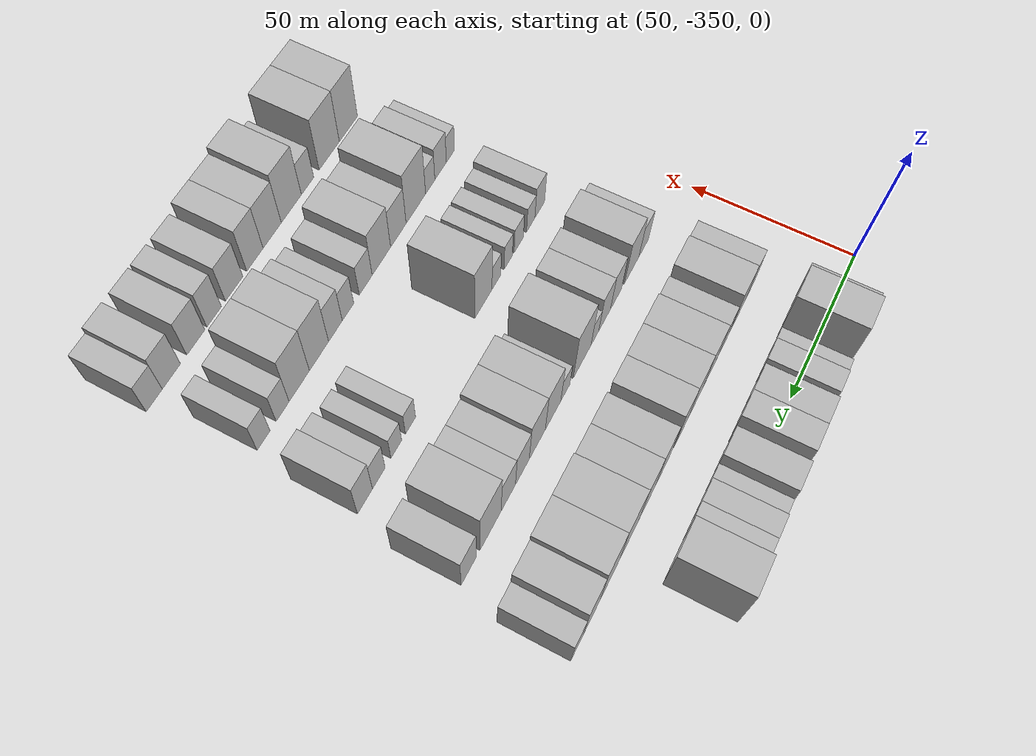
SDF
<sdf version="1.6">
 <world name="default">
  <model name="building_21">
   <static>1</static>
   <pose>50.0000 -328.9839 0 0.000000 0.000000 0.000000</pose>
   <link name="link">
    <pose>0 0 7.50 0 0 0</pose>
    <collision name="collision"><geometry><box><size>20.0000 6.6802 15.0000</size></box></geometry></collision>
    <visual name="visual">
     <cast_shadows>0</cast_shadows>
     <geometry><box><size>20.0000 6.6802 15.0000</size></box></geometry>
     <material>
      <script>
       <uri>model://HANNAS_wall/materials/scripts</uri>
       <uri>model://HANNAS_wall/materials/textures</uri>
       <name>vrc/HANNAS_wall</name>
      </script>
     </material>
    </visual>
   </link>
  </model>
  <model name="building_22">
   <static>1</static>
   <pose>50.0000 -320.3339 0 0.000000 0.000000 0.000000</pose>
   <link name="link">
    <pose>0 0 12.00 0 0 0</pose>
    <collision name="collision"><geometry><box><size>20.0000 10.6198 24.0000</size></box></geometry></collision>
    <visual name="visual">
     <cast_shadows>0</cast_shadows>
     <geometry><box><size>20.0000 10.6198 24.0000</size></box></geometry>
     <material>
      <script>
       <uri>model://HANNAS_wall/materials/scripts</uri>
       <uri>model://HANNAS_wall/materials/textures</uri>
       <name>vrc/HANNAS_wall</name>
      </script>
     </material>
    </visual>
   </link>
  </model>
  <model name="building_23">
   <static>1</static>
   <pose>50.0000 -309.4199 0 0.000000 0.000000 0.000000</pose>
   <link name="link">
    <pose>0 0 6.00 0 0 0</pose>
    <collision name="collision"><geometry><box><size>20.0000 5.2083 12.0000</size></box></geometry></collision>
    <visual name="visual">
     <cast_shadows>0</cast_shadows>
     <geometry><box><size>20.0000 5.2083 12.0000</size></box></geometry>
     <material>
      <script>
       <uri>model://HANNAS_wall/materials/scripts</uri>
       <uri>model://HANNAS_wall/materials/textures</uri>
       <name>vrc/HANNAS_wall</name>
      </script>
     </material>
    </visual>
   </link>
  </model>
  <model name="building_24">
   <static>1</static>
   <pose>50.0000 -303.4045 0 0.000000 0.000000 0.000000</pose>
   <link name="link">
    <pose>0 0 7.50 0 0 0</pose>
    <collision name="collision"><geometry><box><size>20.0000 6.8224 15.0000</size></box></geometry></collision>
    <visual name="visual">
     <cast_shadows>0</cast_shadows>
     <geometry><box><size>20.0000 6.8224 15.0000</size></box></geometry>
     <material>
      <script>
       <uri>model://HANNAS_wall/materials/scripts</uri>
       <uri>model://HANNAS_wall/materials/textures</uri>
       <name>vrc/HANNAS_wall</name>
      </script>
     </material>
    </visual>
   </link>
  </model>
  <model name="building_25">
   <static>1</static>
   <pose>50.0000 -292.8908 0 0.000000 0.000000 0.000000</pose>
   <link name="link">
    <pose>0 0 9.00 0 0 0</pose>
    <collision name="collision"><geometry><box><size>20.0000 8.2052 18.0000</size></box></geometry></collision>
    <visual name="visual">
     <cast_shadows>0</cast_shadows>
     <geometry><box><size>20.0000 8.2052 18.0000</size></box></geometry>
     <material>
      <script>
       <uri>model://HANNAS_wall/materials/scripts</uri>
       <uri>model://HANNAS_wall/materials/textures</uri>
       <name>vrc/HANNAS_wall</name>
      </script>
     </material>
    </visual>
   </link>
  </model>
  <model name="building_26">
   <static>1</static>
   <pose>50.0000 -284.7162 0 0.000000 0.000000 0.000000</pose>
   <link name="link">
    <pose>0 0 9.00 0 0 0</pose>
    <collision name="collision"><geometry><box><size>20.0000 8.1438 18.0000</size></box></geometry></collision>
    <visual name="visual">
     <cast_shadows>0</cast_shadows>
     <geometry><box><size>20.0000 8.1438 18.0000</size></box></geometry>
     <material>
      <script>
       <uri>model://HANNAS_wall/materials/scripts</uri>
       <uri>model://HANNAS_wall/materials/textures</uri>
       <name>vrc/HANNAS_wall</name>
      </script>
     </material>
    </visual>
   </link>
  </model>
  <model name="building_27">
   <static>1</static>
   <pose>50.0000 -273.2896 0 0.000000 0.000000 0.000000</pose>
   <link name="link">
    <pose>0 0 9.00 0 0 0</pose>
    <collision name="collision"><geometry><box><size>20.0000 8.7095 18.0000</size></box></geometry></collision>
    <visual name="visual">
     <cast_shadows>0</cast_shadows>
     <geometry><box><size>20.0000 8.7095 18.0000</size></box></geometry>
     <material>
      <script>
       <uri>model://HANNAS_wall/materials/scripts</uri>
       <uri>model://HANNAS_wall/materials/textures</uri>
       <name>vrc/HANNAS_wall</name>
      </script>
     </material>
    </visual>
   </link>
  </model>
  <model name="building_28">
   <static>1</static>
   <pose>50.0000 -266.2153 0 0.000000 0.000000 0.000000</pose>
   <link name="link">
    <pose>0 0 6.00 0 0 0</pose>
    <collision name="collision"><geometry><box><size>20.0000 5.4390 12.0000</size></box></geometry></collision>
    <visual name="visual">
     <cast_shadows>0</cast_shadows>
     <geometry><box><size>20.0000 5.4390 12.0000</size></box></geometry>
     <material>
      <script>
       <uri>model://HANNAS_wall/materials/scripts</uri>
       <uri>model://HANNAS_wall/materials/textures</uri>
       <name>vrc/HANNAS_wall</name>
      </script>
     </material>
    </visual>
   </link>
  </model>
  <model name="building_29">
   <static>1</static>
   <pose>50.0000 -260.1378 0 0.000000 0.000000 0.000000</pose>
   <link name="link">
    <pose>0 0 7.50 0 0 0</pose>
    <collision name="collision"><geometry><box><size>20.0000 6.7161 15.0000</size></box></geometry></collision>
    <visual name="visual">
     <cast_shadows>0</cast_shadows>
     <geometry><box><size>20.0000 6.7161 15.0000</size></box></geometry>
     <material>
      <script>
       <uri>model://HANNAS_wall/materials/scripts</uri>
       <uri>model://HANNAS_wall/materials/textures</uri>
       <name>vrc/HANNAS_wall</name>
      </script>
     </material>
    </visual>
   </link>
  </model>
  <model name="building_30">
   <static>1</static>
   <pose>50.0000 -253.0541 0 0.000000 0.000000 0.000000</pose>
   <link name="link">
    <pose>0 0 7.50 0 0 0</pose>
    <collision name="collision"><geometry><box><size>20.0000 7.4514 15.0000</size></box></geometry></collision>
    <visual name="visual">
     <cast_shadows>0</cast_shadows>
     <geometry><box><size>20.0000 7.4514 15.0000</size></box></geometry>
     <material>
      <script>
       <uri>model://HANNAS_wall/materials/scripts</uri>
       <uri>model://HANNAS_wall/materials/textures</uri>
       <name>vrc/HANNAS_wall</name>
      </script>
     </material>
    </visual>
   </link>
  </model>
  <model name="building_31">
   <static>1</static>
   <pose>50.0000 -243.6839 0 0.000000 0.000000 0.000000</pose>
   <link name="link">
    <pose>0 0 12.00 0 0 0</pose>
    <collision name="collision"><geometry><box><size>20.0000 11.2891 24.0000</size></box></geometry></collision>
    <visual name="visual">
     <cast_shadows>0</cast_shadows>
     <geometry><box><size>20.0000 11.2891 24.0000</size></box></geometry>
     <material>
      <script>
       <uri>model://HANNAS_wall/materials/scripts</uri>
       <uri>model://HANNAS_wall/materials/textures</uri>
       <name>vrc/HANNAS_wall</name>
      </script>
     </material>
    </visual>
   </link>
  </model>
  <model name="building_138">
   <static>1</static>
   <pose>82.0000 -324.6892 0 0.000000 0.000000 0.000000</pose>
   <link name="link">
    <pose>0 0 9.00 0 0 0</pose>
    <collision name="collision"><geometry><box><size>20.0000 7.4037 18.0000</size></box></geometry></collision>
    <visual name="visual">
     <cast_shadows>0</cast_shadows>
     <geometry><box><size>20.0000 7.4037 18.0000</size></box></geometry>
     <material>
      <script>
       <uri>model://HANNAS_wall/materials/scripts</uri>
       <uri>model://HANNAS_wall/materials/textures</uri>
       <name>vrc/HANNAS_wall</name>
      </script>
     </material>
    </visual>
   </link>
  </model>
  <model name="building_139">
   <static>1</static>
   <pose>82.0000 -315.9033 0 0.000000 0.000000 0.000000</pose>
   <link name="link">
    <pose>0 0 10.50 0 0 0</pose>
    <collision name="collision"><geometry><box><size>20.0000 10.1682 21.0000</size></box></geometry></collision>
    <visual name="visual">
     <cast_shadows>0</cast_shadows>
     <geometry><box><size>20.0000 10.1682 21.0000</size></box></geometry>
     <material>
      <script>
       <uri>model://HANNAS_wall/materials/scripts</uri>
       <uri>model://HANNAS_wall/materials/textures</uri>
       <name>vrc/HANNAS_wall</name>
      </script>
     </material>
    </visual>
   </link>
  </model>
  <model name="building_140">
   <static>1</static>
   <pose>82.0000 -304.9420 0 0.000000 0.000000 0.000000</pose>
   <link name="link">
    <pose>0 0 9.00 0 0 0</pose>
    <collision name="collision"><geometry><box><size>20.0000 7.7544 18.0000</size></box></geometry></collision>
    <visual name="visual">
     <cast_shadows>0</cast_shadows>
     <geometry><box><size>20.0000 7.7544 18.0000</size></box></geometry>
     <material>
      <script>
       <uri>model://HANNAS_wall/materials/scripts</uri>
       <uri>model://HANNAS_wall/materials/textures</uri>
       <name>vrc/HANNAS_wall</name>
      </script>
     </material>
    </visual>
   </link>
  </model>
  <model name="building_141">
   <static>1</static>
   <pose>82.0000 -296.1862 0 0.000000 0.000000 0.000000</pose>
   <link name="link">
    <pose>0 0 10.50 0 0 0</pose>
    <collision name="collision"><geometry><box><size>20.0000 9.7571 21.0000</size></box></geometry></collision>
    <visual name="visual">
     <cast_shadows>0</cast_shadows>
     <geometry><box><size>20.0000 9.7571 21.0000</size></box></geometry>
     <material>
      <script>
       <uri>model://HANNAS_wall/materials/scripts</uri>
       <uri>model://HANNAS_wall/materials/textures</uri>
       <name>vrc/HANNAS_wall</name>
      </script>
     </material>
    </visual>
   </link>
  </model>
  <model name="building_142">
   <static>1</static>
   <pose>82.0000 -286.1966 0 0.000000 0.000000 0.000000</pose>
   <link name="link">
    <pose>0 0 10.50 0 0 0</pose>
    <collision name="collision"><geometry><box><size>20.0000 10.2221 21.0000</size></box></geometry></collision>
    <visual name="visual">
     <cast_shadows>0</cast_shadows>
     <geometry><box><size>20.0000 10.2221 21.0000</size></box></geometry>
     <material>
      <script>
       <uri>model://HANNAS_wall/materials/scripts</uri>
       <uri>model://HANNAS_wall/materials/textures</uri>
       <name>vrc/HANNAS_wall</name>
      </script>
     </material>
    </visual>
   </link>
  </model>
  <model name="building_143">
   <static>1</static>
   <pose>82.0000 -276.7585 0 0.000000 0.000000 0.000000</pose>
   <link name="link">
    <pose>0 0 10.50 0 0 0</pose>
    <collision name="collision"><geometry><box><size>20.0000 8.6542 21.0000</size></box></geometry></collision>
    <visual name="visual">
     <cast_shadows>0</cast_shadows>
     <geometry><box><size>20.0000 8.6542 21.0000</size></box></geometry>
     <material>
      <script>
       <uri>model://HANNAS_wall/materials/scripts</uri>
       <uri>model://HANNAS_wall/materials/textures</uri>
       <name>vrc/HANNAS_wall</name>
      </script>
     </material>
    </visual>
   </link>
  </model>
  <model name="building_144">
   <static>1</static>
   <pose>82.0000 -264.7144 0 0.000000 0.000000 0.000000</pose>
   <link name="link">
    <pose>0 0 10.50 0 0 0</pose>
    <collision name="collision"><geometry><box><size>20.0000 9.4339 21.0000</size></box></geometry></collision>
    <visual name="visual">
     <cast_shadows>0</cast_shadows>
     <geometry><box><size>20.0000 9.4339 21.0000</size></box></geometry>
     <material>
      <script>
       <uri>model://HANNAS_wall/materials/scripts</uri>
       <uri>model://HANNAS_wall/materials/textures</uri>
       <name>vrc/HANNAS_wall</name>
      </script>
     </material>
    </visual>
   </link>
  </model>
  <model name="building_145">
   <static>1</static>
   <pose>82.0000 -255.0088 0 0.000000 0.000000 0.000000</pose>
   <link name="link">
    <pose>0 0 10.50 0 0 0</pose>
    <collision name="collision"><geometry><box><size>20.0000 9.9774 21.0000</size></box></geometry></collision>
    <visual name="visual">
     <cast_shadows>0</cast_shadows>
     <geometry><box><size>20.0000 9.9774 21.0000</size></box></geometry>
     <material>
      <script>
       <uri>model://HANNAS_wall/materials/scripts</uri>
       <uri>model://HANNAS_wall/materials/textures</uri>
       <name>vrc/HANNAS_wall</name>
      </script>
     </material>
    </visual>
   </link>
  </model>
  <model name="building_146">
   <static>1</static>
   <pose>82.0000 -244.0991 0 0.000000 0.000000 0.000000</pose>
   <link name="link">
    <pose>0 0 12.00 0 0 0</pose>
    <collision name="collision"><geometry><box><size>20.0000 11.8420 24.0000</size></box></geometry></collision>
    <visual name="visual">
     <cast_shadows>0</cast_shadows>
     <geometry><box><size>20.0000 11.8420 24.0000</size></box></geometry>
     <material>
      <script>
       <uri>model://HANNAS_wall/materials/scripts</uri>
       <uri>model://HANNAS_wall/materials/textures</uri>
       <name>vrc/HANNAS_wall</name>
      </script>
     </material>
    </visual>
   </link>
  </model>
  <model name="building_147">
   <static>1</static>
   <pose>82.0000 -232.5114 0 0.000000 0.000000 0.000000</pose>
   <link name="link">
    <pose>0 0 12.00 0 0 0</pose>
    <collision name="collision"><geometry><box><size>20.0000 11.3333 24.0000</size></box></geometry></collision>
    <visual name="visual">
     <cast_shadows>0</cast_shadows>
     <geometry><box><size>20.0000 11.3333 24.0000</size></box></geometry>
     <material>
      <script>
       <uri>model://HANNAS_wall/materials/scripts</uri>
       <uri>model://HANNAS_wall/materials/textures</uri>
       <name>vrc/HANNAS_wall</name>
      </script>
     </material>
    </visual>
   </link>
  </model>
  <model name="building_148">
   <static>1</static>
   <pose>82.0000 -222.1345 0 0.000000 0.000000 0.000000</pose>
   <link name="link">
    <pose>0 0 10.50 0 0 0</pose>
    <collision name="collision"><geometry><box><size>20.0000 9.4205 21.0000</size></box></geometry></collision>
    <visual name="visual">
     <cast_shadows>0</cast_shadows>
     <geometry><box><size>20.0000 9.4205 21.0000</size></box></geometry>
     <material>
      <script>
       <uri>model://HANNAS_wall/materials/scripts</uri>
       <uri>model://HANNAS_wall/materials/textures</uri>
       <name>vrc/HANNAS_wall</name>
      </script>
     </material>
    </visual>
   </link>
  </model>
  <model name="building_149">
   <static>1</static>
   <pose>82.0000 -214.0069 0 0.000000 0.000000 0.000000</pose>
   <link name="link">
    <pose>0 0 7.50 0 0 0</pose>
    <collision name="collision"><geometry><box><size>20.0000 6.8347 15.0000</size></box></geometry></collision>
    <visual name="visual">
     <cast_shadows>0</cast_shadows>
     <geometry><box><size>20.0000 6.8347 15.0000</size></box></geometry>
     <material>
      <script>
       <uri>model://HANNAS_wall/materials/scripts</uri>
       <uri>model://HANNAS_wall/materials/textures</uri>
       <name>vrc/HANNAS_wall</name>
      </script>
     </material>
    </visual>
   </link>
  </model>
  <model name="building_261">
   <static>1</static>
   <pose>114.0000 -324.1151 0 0.000000 0.000000 0.000000</pose>
   <link name="link">
    <pose>0 0 7.50 0 0 0</pose>
    <collision name="collision"><geometry><box><size>20.0000 6.7660 15.0000</size></box></geometry></collision>
    <visual name="visual">
     <cast_shadows>0</cast_shadows>
     <geometry><box><size>20.0000 6.7660 15.0000</size></box></geometry>
     <material>
      <script>
       <uri>model://HANNAS_wall/materials/scripts</uri>
       <uri>model://HANNAS_wall/materials/textures</uri>
       <name>vrc/HANNAS_wall</name>
      </script>
     </material>
    </visual>
   </link>
  </model>
  <model name="building_262">
   <static>1</static>
   <pose>114.0000 -315.8286 0 0.000000 0.000000 0.000000</pose>
   <link name="link">
    <pose>0 0 10.50 0 0 0</pose>
    <collision name="collision"><geometry><box><size>20.0000 9.8069 21.0000</size></box></geometry></collision>
    <visual name="visual">
     <cast_shadows>0</cast_shadows>
     <geometry><box><size>20.0000 9.8069 21.0000</size></box></geometry>
     <material>
      <script>
       <uri>model://HANNAS_wall/materials/scripts</uri>
       <uri>model://HANNAS_wall/materials/textures</uri>
       <name>vrc/HANNAS_wall</name>
      </script>
     </material>
    </visual>
   </link>
  </model>
  <model name="building_263">
   <static>1</static>
   <pose>114.0000 -305.2936 0 0.000000 0.000000 0.000000</pose>
   <link name="link">
    <pose>0 0 9.00 0 0 0</pose>
    <collision name="collision"><geometry><box><size>20.0000 7.2631 18.0000</size></box></geometry></collision>
    <visual name="visual">
     <cast_shadows>0</cast_shadows>
     <geometry><box><size>20.0000 7.2631 18.0000</size></box></geometry>
     <material>
      <script>
       <uri>model://HANNAS_wall/materials/scripts</uri>
       <uri>model://HANNAS_wall/materials/textures</uri>
       <name>vrc/HANNAS_wall</name>
      </script>
     </material>
    </visual>
   </link>
  </model>
  <model name="building_264">
   <static>1</static>
   <pose>114.0000 -297.8615 0 0.000000 0.000000 0.000000</pose>
   <link name="link">
    <pose>0 0 9.00 0 0 0</pose>
    <collision name="collision"><geometry><box><size>20.0000 7.6011 18.0000</size></box></geometry></collision>
    <visual name="visual">
     <cast_shadows>0</cast_shadows>
     <geometry><box><size>20.0000 7.6011 18.0000</size></box></geometry>
     <material>
      <script>
       <uri>model://HANNAS_wall/materials/scripts</uri>
       <uri>model://HANNAS_wall/materials/textures</uri>
       <name>vrc/HANNAS_wall</name>
      </script>
     </material>
    </visual>
   </link>
  </model>
  <model name="building_265">
   <static>1</static>
   <pose>114.0000 -291.5977 0 0.000000 0.000000 0.000000</pose>
   <link name="link">
    <pose>0 0 6.00 0 0 0</pose>
    <collision name="collision"><geometry><box><size>20.0000 4.9265 12.0000</size></box></geometry></collision>
    <visual name="visual">
     <cast_shadows>0</cast_shadows>
     <geometry><box><size>20.0000 4.9265 12.0000</size></box></geometry>
     <material>
      <script>
       <uri>model://HANNAS_wall/materials/scripts</uri>
       <uri>model://HANNAS_wall/materials/textures</uri>
       <name>vrc/HANNAS_wall</name>
      </script>
     </material>
    </visual>
   </link>
  </model>
  <model name="building_266">
   <static>1</static>
   <pose>114.0000 -283.5433 0 0.000000 0.000000 0.000000</pose>
   <link name="link">
    <pose>0 0 12.00 0 0 0</pose>
    <collision name="collision"><geometry><box><size>20.0000 11.1822 24.0000</size></box></geometry></collision>
    <visual name="visual">
     <cast_shadows>0</cast_shadows>
     <geometry><box><size>20.0000 11.1822 24.0000</size></box></geometry>
     <material>
      <script>
       <uri>model://HANNAS_wall/materials/scripts</uri>
       <uri>model://HANNAS_wall/materials/textures</uri>
       <name>vrc/HANNAS_wall</name>
      </script>
     </material>
    </visual>
   </link>
  </model>
  <model name="building_267">
   <static>1</static>
   <pose>114.0000 -273.1621 0 0.000000 0.000000 0.000000</pose>
   <link name="link">
    <pose>0 0 6.00 0 0 0</pose>
    <collision name="collision"><geometry><box><size>20.0000 5.5802 12.0000</size></box></geometry></collision>
    <visual name="visual">
     <cast_shadows>0</cast_shadows>
     <geometry><box><size>20.0000 5.5802 12.0000</size></box></geometry>
     <material>
      <script>
       <uri>model://HANNAS_wall/materials/scripts</uri>
       <uri>model://HANNAS_wall/materials/textures</uri>
       <name>vrc/HANNAS_wall</name>
      </script>
     </material>
    </visual>
   </link>
  </model>
  <model name="building_268">
   <static>1</static>
   <pose>114.0000 -265.7507 0 0.000000 0.000000 0.000000</pose>
   <link name="link">
    <pose>0 0 10.50 0 0 0</pose>
    <collision name="collision"><geometry><box><size>20.0000 9.2427 21.0000</size></box></geometry></collision>
    <visual name="visual">
     <cast_shadows>0</cast_shadows>
     <geometry><box><size>20.0000 9.2427 21.0000</size></box></geometry>
     <material>
      <script>
       <uri>model://HANNAS_wall/materials/scripts</uri>
       <uri>model://HANNAS_wall/materials/textures</uri>
       <name>vrc/HANNAS_wall</name>
      </script>
     </material>
    </visual>
   </link>
  </model>
  <model name="building_269">
   <static>1</static>
   <pose>114.0000 -256.4386 0 0.000000 0.000000 0.000000</pose>
   <link name="link">
    <pose>0 0 10.50 0 0 0</pose>
    <collision name="collision"><geometry><box><size>20.0000 9.3814 21.0000</size></box></geometry></collision>
    <visual name="visual">
     <cast_shadows>0</cast_shadows>
     <geometry><box><size>20.0000 9.3814 21.0000</size></box></geometry>
     <material>
      <script>
       <uri>model://HANNAS_wall/materials/scripts</uri>
       <uri>model://HANNAS_wall/materials/textures</uri>
       <name>vrc/HANNAS_wall</name>
      </script>
     </material>
    </visual>
   </link>
  </model>
  <model name="building_270">
   <static>1</static>
   <pose>114.0000 -247.8309 0 0.000000 0.000000 0.000000</pose>
   <link name="link">
    <pose>0 0 9.00 0 0 0</pose>
    <collision name="collision"><geometry><box><size>20.0000 7.8340 18.0000</size></box></geometry></collision>
    <visual name="visual">
     <cast_shadows>0</cast_shadows>
     <geometry><box><size>20.0000 7.8340 18.0000</size></box></geometry>
     <material>
      <script>
       <uri>model://HANNAS_wall/materials/scripts</uri>
       <uri>model://HANNAS_wall/materials/textures</uri>
       <name>vrc/HANNAS_wall</name>
      </script>
     </material>
    </visual>
   </link>
  </model>
  <model name="building_271">
   <static>1</static>
   <pose>114.0000 -239.8978 0 0.000000 0.000000 0.000000</pose>
   <link name="link">
    <pose>0 0 9.00 0 0 0</pose>
    <collision name="collision"><geometry><box><size>20.0000 8.0323 18.0000</size></box></geometry></collision>
    <visual name="visual">
     <cast_shadows>0</cast_shadows>
     <geometry><box><size>20.0000 8.0323 18.0000</size></box></geometry>
     <material>
      <script>
       <uri>model://HANNAS_wall/materials/scripts</uri>
       <uri>model://HANNAS_wall/materials/textures</uri>
       <name>vrc/HANNAS_wall</name>
      </script>
     </material>
    </visual>
   </link>
  </model>
  <model name="building_272">
   <static>1</static>
   <pose>114.0000 -230.1592 0 0.000000 0.000000 0.000000</pose>
   <link name="link">
    <pose>0 0 12.00 0 0 0</pose>
    <collision name="collision"><geometry><box><size>20.0000 11.4448 24.0000</size></box></geometry></collision>
    <visual name="visual">
     <cast_shadows>0</cast_shadows>
     <geometry><box><size>20.0000 11.4448 24.0000</size></box></geometry>
     <material>
      <script>
       <uri>model://HANNAS_wall/materials/scripts</uri>
       <uri>model://HANNAS_wall/materials/textures</uri>
       <name>vrc/HANNAS_wall</name>
      </script>
     </material>
    </visual>
   </link>
  </model>
  <model name="building_273">
   <static>1</static>
   <pose>114.0000 -218.4483 0 0.000000 0.000000 0.000000</pose>
   <link name="link">
    <pose>0 0 9.00 0 0 0</pose>
    <collision name="collision"><geometry><box><size>20.0000 7.9770 18.0000</size></box></geometry></collision>
    <visual name="visual">
     <cast_shadows>0</cast_shadows>
     <geometry><box><size>20.0000 7.9770 18.0000</size></box></geometry>
     <material>
      <script>
       <uri>model://HANNAS_wall/materials/scripts</uri>
       <uri>model://HANNAS_wall/materials/textures</uri>
       <name>vrc/HANNAS_wall</name>
      </script>
     </material>
    </visual>
   </link>
  </model>
  <model name="building_376">
   <static>1</static>
   <pose>146.0000 -321.7645 0 0.000000 0.000000 0.000000</pose>
   <link name="link">
    <pose>0 0 7.50 0 0 0</pose>
    <collision name="collision"><geometry><box><size>20.0000 6.2545 15.0000</size></box></geometry></collision>
    <visual name="visual">
     <cast_shadows>0</cast_shadows>
     <geometry><box><size>20.0000 6.2545 15.0000</size></box></geometry>
     <material>
      <script>
       <uri>model://HANNAS_wall/materials/scripts</uri>
       <uri>model://HANNAS_wall/materials/textures</uri>
       <name>vrc/HANNAS_wall</name>
      </script>
     </material>
    </visual>
   </link>
  </model>
  <model name="building_377">
   <static>1</static>
   <pose>146.0000 -315.9708 0 0.000000 0.000000 0.000000</pose>
   <link name="link">
    <pose>0 0 6.00 0 0 0</pose>
    <collision name="collision"><geometry><box><size>20.0000 5.3329 12.0000</size></box></geometry></collision>
    <visual name="visual">
     <cast_shadows>0</cast_shadows>
     <geometry><box><size>20.0000 5.3329 12.0000</size></box></geometry>
     <material>
      <script>
       <uri>model://HANNAS_wall/materials/scripts</uri>
       <uri>model://HANNAS_wall/materials/textures</uri>
       <name>vrc/HANNAS_wall</name>
      </script>
     </material>
    </visual>
   </link>
  </model>
  <model name="building_378">
   <static>1</static>
   <pose>146.0000 -308.3837 0 0.000000 0.000000 0.000000</pose>
   <link name="link">
    <pose>0 0 6.00 0 0 0</pose>
    <collision name="collision"><geometry><box><size>20.0000 5.8414 12.0000</size></box></geometry></collision>
    <visual name="visual">
     <cast_shadows>0</cast_shadows>
     <geometry><box><size>20.0000 5.8414 12.0000</size></box></geometry>
     <material>
      <script>
       <uri>model://HANNAS_wall/materials/scripts</uri>
       <uri>model://HANNAS_wall/materials/textures</uri>
       <name>vrc/HANNAS_wall</name>
      </script>
     </material>
    </visual>
   </link>
  </model>
  <model name="building_379">
   <static>1</static>
   <pose>146.0000 -301.8788 0 0.000000 0.000000 0.000000</pose>
   <link name="link">
    <pose>0 0 6.00 0 0 0</pose>
    <collision name="collision"><geometry><box><size>20.0000 5.1683 12.0000</size></box></geometry></collision>
    <visual name="visual">
     <cast_shadows>0</cast_shadows>
     <geometry><box><size>20.0000 5.1683 12.0000</size></box></geometry>
     <material>
      <script>
       <uri>model://HANNAS_wall/materials/scripts</uri>
       <uri>model://HANNAS_wall/materials/textures</uri>
       <name>vrc/HANNAS_wall</name>
      </script>
     </material>
    </visual>
   </link>
  </model>
  <model name="building_380">
   <static>1</static>
   <pose>146.0000 -294.6162 0 0.000000 0.000000 0.000000</pose>
   <link name="link">
    <pose>0 0 6.00 0 0 0</pose>
    <collision name="collision"><geometry><box><size>20.0000 5.3569 12.0000</size></box></geometry></collision>
    <visual name="visual">
     <cast_shadows>0</cast_shadows>
     <geometry><box><size>20.0000 5.3569 12.0000</size></box></geometry>
     <material>
      <script>
       <uri>model://HANNAS_wall/materials/scripts</uri>
       <uri>model://HANNAS_wall/materials/textures</uri>
       <name>vrc/HANNAS_wall</name>
      </script>
     </material>
    </visual>
   </link>
  </model>
  <model name="building_381">
   <static>1</static>
   <pose>146.0000 -286.8459 0 0.000000 0.000000 0.000000</pose>
   <link name="link">
    <pose>0 0 12.00 0 0 0</pose>
    <collision name="collision"><geometry><box><size>20.0000 10.1837 24.0000</size></box></geometry></collision>
    <visual name="visual">
     <cast_shadows>0</cast_shadows>
     <geometry><box><size>20.0000 10.1837 24.0000</size></box></geometry>
     <material>
      <script>
       <uri>model://HANNAS_wall/materials/scripts</uri>
       <uri>model://HANNAS_wall/materials/textures</uri>
       <name>vrc/HANNAS_wall</name>
      </script>
     </material>
    </visual>
   </link>
  </model>
  <model name="building_382">
   <static>1</static>
   <pose>146.0000 -245.6179 0 0.000000 0.000000 0.000000</pose>
   <link name="link">
    <pose>0 0 6.00 0 0 0</pose>
    <collision name="collision"><geometry><box><size>20.0000 5.4241 12.0000</size></box></geometry></collision>
    <visual name="visual">
     <cast_shadows>0</cast_shadows>
     <geometry><box><size>20.0000 5.4241 12.0000</size></box></geometry>
     <material>
      <script>
       <uri>model://HANNAS_wall/materials/scripts</uri>
       <uri>model://HANNAS_wall/materials/textures</uri>
       <name>vrc/HANNAS_wall</name>
      </script>
     </material>
    </visual>
   </link>
  </model>
  <model name="building_383">
   <static>1</static>
   <pose>146.0000 -238.0729 0 0.000000 0.000000 0.000000</pose>
   <link name="link">
    <pose>0 0 6.00 0 0 0</pose>
    <collision name="collision"><geometry><box><size>20.0000 5.6659 12.0000</size></box></geometry></collision>
    <visual name="visual">
     <cast_shadows>0</cast_shadows>
     <geometry><box><size>20.0000 5.6659 12.0000</size></box></geometry>
     <material>
      <script>
       <uri>model://HANNAS_wall/materials/scripts</uri>
       <uri>model://HANNAS_wall/materials/textures</uri>
       <name>vrc/HANNAS_wall</name>
      </script>
     </material>
    </visual>
   </link>
  </model>
  <model name="building_384">
   <static>1</static>
   <pose>146.0000 -228.9917 0 0.000000 0.000000 0.000000</pose>
   <link name="link">
    <pose>0 0 7.50 0 0 0</pose>
    <collision name="collision"><geometry><box><size>20.0000 6.4965 15.0000</size></box></geometry></collision>
    <visual name="visual">
     <cast_shadows>0</cast_shadows>
     <geometry><box><size>20.0000 6.4965 15.0000</size></box></geometry>
     <material>
      <script>
       <uri>model://HANNAS_wall/materials/scripts</uri>
       <uri>model://HANNAS_wall/materials/textures</uri>
       <name>vrc/HANNAS_wall</name>
      </script>
     </material>
    </visual>
   </link>
  </model>
  <model name="building_385">
   <static>1</static>
   <pose>146.0000 -221.9746 0 0.000000 0.000000 0.000000</pose>
   <link name="link">
    <pose>0 0 9.00 0 0 0</pose>
    <collision name="collision"><geometry><box><size>20.0000 7.5379 18.0000</size></box></geometry></collision>
    <visual name="visual">
     <cast_shadows>0</cast_shadows>
     <geometry><box><size>20.0000 7.5379 18.0000</size></box></geometry>
     <material>
      <script>
       <uri>model://HANNAS_wall/materials/scripts</uri>
       <uri>model://HANNAS_wall/materials/textures</uri>
       <name>vrc/HANNAS_wall</name>
      </script>
     </material>
    </visual>
   </link>
  </model>
  <model name="building_485">
   <static>1</static>
   <pose>178.0000 -326.3454 0 0.000000 0.000000 0.000000</pose>
   <link name="link">
    <pose>0 0 6.00 0 0 0</pose>
    <collision name="collision"><geometry><box><size>20.0000 5.0792 12.0000</size></box></geometry></collision>
    <visual name="visual">
     <cast_shadows>0</cast_shadows>
     <geometry><box><size>20.0000 5.0792 12.0000</size></box></geometry>
     <material>
      <script>
       <uri>model://HANNAS_wall/materials/scripts</uri>
       <uri>model://HANNAS_wall/materials/textures</uri>
       <name>vrc/HANNAS_wall</name>
      </script>
     </material>
    </visual>
   </link>
  </model>
  <model name="building_486">
   <static>1</static>
   <pose>178.0000 -320.2861 0 0.000000 0.000000 0.000000</pose>
   <link name="link">
    <pose>0 0 7.50 0 0 0</pose>
    <collision name="collision"><geometry><box><size>20.0000 7.0393 15.0000</size></box></geometry></collision>
    <visual name="visual">
     <cast_shadows>0</cast_shadows>
     <geometry><box><size>20.0000 7.0393 15.0000</size></box></geometry>
     <material>
      <script>
       <uri>model://HANNAS_wall/materials/scripts</uri>
       <uri>model://HANNAS_wall/materials/textures</uri>
       <name>vrc/HANNAS_wall</name>
      </script>
     </material>
    </visual>
   </link>
  </model>
  <model name="building_487">
   <static>1</static>
   <pose>178.0000 -313.9782 0 0.000000 0.000000 0.000000</pose>
   <link name="link">
    <pose>0 0 6.00 0 0 0</pose>
    <collision name="collision"><geometry><box><size>20.0000 5.5766 12.0000</size></box></geometry></collision>
    <visual name="visual">
     <cast_shadows>0</cast_shadows>
     <geometry><box><size>20.0000 5.5766 12.0000</size></box></geometry>
     <material>
      <script>
       <uri>model://HANNAS_wall/materials/scripts</uri>
       <uri>model://HANNAS_wall/materials/textures</uri>
       <name>vrc/HANNAS_wall</name>
      </script>
     </material>
    </visual>
   </link>
  </model>
  <model name="building_488">
   <static>1</static>
   <pose>178.0000 -305.4232 0 0.000000 0.000000 0.000000</pose>
   <link name="link">
    <pose>0 0 12.00 0 0 0</pose>
    <collision name="collision"><geometry><box><size>20.0000 11.5334 24.0000</size></box></geometry></collision>
    <visual name="visual">
     <cast_shadows>0</cast_shadows>
     <geometry><box><size>20.0000 11.5334 24.0000</size></box></geometry>
     <material>
      <script>
       <uri>model://HANNAS_wall/materials/scripts</uri>
       <uri>model://HANNAS_wall/materials/textures</uri>
       <name>vrc/HANNAS_wall</name>
      </script>
     </material>
    </visual>
   </link>
  </model>
  <model name="building_489">
   <static>1</static>
   <pose>178.0000 -295.1609 0 0.000000 0.000000 0.000000</pose>
   <link name="link">
    <pose>0 0 9.00 0 0 0</pose>
    <collision name="collision"><geometry><box><size>20.0000 8.9912 18.0000</size></box></geometry></collision>
    <visual name="visual">
     <cast_shadows>0</cast_shadows>
     <geometry><box><size>20.0000 8.9912 18.0000</size></box></geometry>
     <material>
      <script>
       <uri>model://HANNAS_wall/materials/scripts</uri>
       <uri>model://HANNAS_wall/materials/textures</uri>
       <name>vrc/HANNAS_wall</name>
      </script>
     </material>
    </visual>
   </link>
  </model>
  <model name="building_490">
   <static>1</static>
   <pose>178.0000 -285.4625 0 0.000000 0.000000 0.000000</pose>
   <link name="link">
    <pose>0 0 10.50 0 0 0</pose>
    <collision name="collision"><geometry><box><size>20.0000 10.4055 21.0000</size></box></geometry></collision>
    <visual name="visual">
     <cast_shadows>0</cast_shadows>
     <geometry><box><size>20.0000 10.4055 21.0000</size></box></geometry>
     <material>
      <script>
       <uri>model://HANNAS_wall/materials/scripts</uri>
       <uri>model://HANNAS_wall/materials/textures</uri>
       <name>vrc/HANNAS_wall</name>
      </script>
     </material>
    </visual>
   </link>
  </model>
  <model name="building_491">
   <static>1</static>
   <pose>178.0000 -276.6890 0 0.000000 0.000000 0.000000</pose>
   <link name="link">
    <pose>0 0 7.50 0 0 0</pose>
    <collision name="collision"><geometry><box><size>20.0000 7.1416 15.0000</size></box></geometry></collision>
    <visual name="visual">
     <cast_shadows>0</cast_shadows>
     <geometry><box><size>20.0000 7.1416 15.0000</size></box></geometry>
     <material>
      <script>
       <uri>model://HANNAS_wall/materials/scripts</uri>
       <uri>model://HANNAS_wall/materials/textures</uri>
       <name>vrc/HANNAS_wall</name>
      </script>
     </material>
    </visual>
   </link>
  </model>
  <model name="building_492">
   <static>1</static>
   <pose>178.0000 -267.0291 0 0.000000 0.000000 0.000000</pose>
   <link name="link">
    <pose>0 0 7.50 0 0 0</pose>
    <collision name="collision"><geometry><box><size>20.0000 6.1782 15.0000</size></box></geometry></collision>
    <visual name="visual">
     <cast_shadows>0</cast_shadows>
     <geometry><box><size>20.0000 6.1782 15.0000</size></box></geometry>
     <material>
      <script>
       <uri>model://HANNAS_wall/materials/scripts</uri>
       <uri>model://HANNAS_wall/materials/textures</uri>
       <name>vrc/HANNAS_wall</name>
      </script>
     </material>
    </visual>
   </link>
  </model>
  <model name="building_493">
   <static>1</static>
   <pose>178.0000 -260.3136 0 0.000000 0.000000 0.000000</pose>
   <link name="link">
    <pose>0 0 9.00 0 0 0</pose>
    <collision name="collision"><geometry><box><size>20.0000 7.2528 18.0000</size></box></geometry></collision>
    <visual name="visual">
     <cast_shadows>0</cast_shadows>
     <geometry><box><size>20.0000 7.2528 18.0000</size></box></geometry>
     <material>
      <script>
       <uri>model://HANNAS_wall/materials/scripts</uri>
       <uri>model://HANNAS_wall/materials/textures</uri>
       <name>vrc/HANNAS_wall</name>
      </script>
     </material>
    </visual>
   </link>
  </model>
  <model name="building_494">
   <static>1</static>
   <pose>178.0000 -251.7079 0 0.000000 0.000000 0.000000</pose>
   <link name="link">
    <pose>0 0 12.00 0 0 0</pose>
    <collision name="collision"><geometry><box><size>20.0000 9.9585 24.0000</size></box></geometry></collision>
    <visual name="visual">
     <cast_shadows>0</cast_shadows>
     <geometry><box><size>20.0000 9.9585 24.0000</size></box></geometry>
     <material>
      <script>
       <uri>model://HANNAS_wall/materials/scripts</uri>
       <uri>model://HANNAS_wall/materials/textures</uri>
       <name>vrc/HANNAS_wall</name>
      </script>
     </material>
    </visual>
   </link>
  </model>
  <model name="building_495">
   <static>1</static>
   <pose>178.0000 -241.5842 0 0.000000 0.000000 0.000000</pose>
   <link name="link">
    <pose>0 0 12.00 0 0 0</pose>
    <collision name="collision"><geometry><box><size>20.0000 10.2890 24.0000</size></box></geometry></collision>
    <visual name="visual">
     <cast_shadows>0</cast_shadows>
     <geometry><box><size>20.0000 10.2890 24.0000</size></box></geometry>
     <material>
      <script>
       <uri>model://HANNAS_wall/materials/scripts</uri>
       <uri>model://HANNAS_wall/materials/textures</uri>
       <name>vrc/HANNAS_wall</name>
      </script>
     </material>
    </visual>
   </link>
  </model>
  <model name="building_496">
   <static>1</static>
   <pose>178.0000 -233.2331 0 0.000000 0.000000 0.000000</pose>
   <link name="link">
    <pose>0 0 7.50 0 0 0</pose>
    <collision name="collision"><geometry><box><size>20.0000 6.4132 15.0000</size></box></geometry></collision>
    <visual name="visual">
     <cast_shadows>0</cast_shadows>
     <geometry><box><size>20.0000 6.4132 15.0000</size></box></geometry>
     <material>
      <script>
       <uri>model://HANNAS_wall/materials/scripts</uri>
       <uri>model://HANNAS_wall/materials/textures</uri>
       <name>vrc/HANNAS_wall</name>
      </script>
     </material>
    </visual>
   </link>
  </model>
  <model name="building_497">
   <static>1</static>
   <pose>178.0000 -223.9089 0 0.000000 0.000000 0.000000</pose>
   <link name="link">
    <pose>0 0 7.50 0 0 0</pose>
    <collision name="collision"><geometry><box><size>20.0000 6.2352 15.0000</size></box></geometry></collision>
    <visual name="visual">
     <cast_shadows>0</cast_shadows>
     <geometry><box><size>20.0000 6.2352 15.0000</size></box></geometry>
     <material>
      <script>
       <uri>model://HANNAS_wall/materials/scripts</uri>
       <uri>model://HANNAS_wall/materials/textures</uri>
       <name>vrc/HANNAS_wall</name>
      </script>
     </material>
    </visual>
   </link>
  </model>
  <model name="building_609">
   <static>1</static>
   <pose>210.0000 -320.7506 0 0.000000 0.000000 0.000000</pose>
   <link name="link">
    <pose>0 0 12.00 0 0 0</pose>
    <collision name="collision"><geometry><box><size>20.0000 10.6167 24.0000</size></box></geometry></collision>
    <visual name="visual">
     <cast_shadows>0</cast_shadows>
     <geometry><box><size>20.0000 10.6167 24.0000</size></box></geometry>
     <material>
      <script>
       <uri>model://HANNAS_wall/materials/scripts</uri>
       <uri>model://HANNAS_wall/materials/textures</uri>
       <name>vrc/HANNAS_wall</name>
      </script>
     </material>
    </visual>
   </link>
  </model>
  <model name="building_610">
   <static>1</static>
   <pose>210.0000 -309.6496 0 0.000000 0.000000 0.000000</pose>
   <link name="link">
    <pose>0 0 12.00 0 0 0</pose>
    <collision name="collision"><geometry><box><size>20.0000 11.5853 24.0000</size></box></geometry></collision>
    <visual name="visual">
     <cast_shadows>0</cast_shadows>
     <geometry><box><size>20.0000 11.5853 24.0000</size></box></geometry>
     <material>
      <script>
       <uri>model://HANNAS_wall/materials/scripts</uri>
       <uri>model://HANNAS_wall/materials/textures</uri>
       <name>vrc/HANNAS_wall</name>
      </script>
     </material>
    </visual>
   </link>
  </model>
  <model name="building_611">
   <static>1</static>
   <pose>210.0000 -297.4151 0 0.000000 0.000000 0.000000</pose>
   <link name="link">
    <pose>0 0 7.50 0 0 0</pose>
    <collision name="collision"><geometry><box><size>20.0000 6.8837 15.0000</size></box></geometry></collision>
    <visual name="visual">
     <cast_shadows>0</cast_shadows>
     <geometry><box><size>20.0000 6.8837 15.0000</size></box></geometry>
     <material>
      <script>
       <uri>model://HANNAS_wall/materials/scripts</uri>
       <uri>model://HANNAS_wall/materials/textures</uri>
       <name>vrc/HANNAS_wall</name>
      </script>
     </material>
    </visual>
   </link>
  </model>
  <model name="building_612">
   <static>1</static>
   <pose>210.0000 -288.4976 0 0.000000 0.000000 0.000000</pose>
   <link name="link">
    <pose>0 0 12.00 0 0 0</pose>
    <collision name="collision"><geometry><box><size>20.0000 10.9513 24.0000</size></box></geometry></collision>
    <visual name="visual">
     <cast_shadows>0</cast_shadows>
     <geometry><box><size>20.0000 10.9513 24.0000</size></box></geometry>
     <material>
      <script>
       <uri>model://HANNAS_wall/materials/scripts</uri>
       <uri>model://HANNAS_wall/materials/textures</uri>
       <name>vrc/HANNAS_wall</name>
      </script>
     </material>
    </visual>
   </link>
  </model>
  <model name="building_613">
   <static>1</static>
   <pose>210.0000 -278.1925 0 0.000000 0.000000 0.000000</pose>
   <link name="link">
    <pose>0 0 10.50 0 0 0</pose>
    <collision name="collision"><geometry><box><size>20.0000 9.6589 21.0000</size></box></geometry></collision>
    <visual name="visual">
     <cast_shadows>0</cast_shadows>
     <geometry><box><size>20.0000 9.6589 21.0000</size></box></geometry>
     <material>
      <script>
       <uri>model://HANNAS_wall/materials/scripts</uri>
       <uri>model://HANNAS_wall/materials/textures</uri>
       <name>vrc/HANNAS_wall</name>
      </script>
     </material>
    </visual>
   </link>
  </model>
  <model name="building_614">
   <static>1</static>
   <pose>210.0000 -269.1073 0 0.000000 0.000000 0.000000</pose>
   <link name="link">
    <pose>0 0 10.50 0 0 0</pose>
    <collision name="collision"><geometry><box><size>20.0000 8.5114 21.0000</size></box></geometry></collision>
    <visual name="visual">
     <cast_shadows>0</cast_shadows>
     <geometry><box><size>20.0000 8.5114 21.0000</size></box></geometry>
     <material>
      <script>
       <uri>model://HANNAS_wall/materials/scripts</uri>
       <uri>model://HANNAS_wall/materials/textures</uri>
       <name>vrc/HANNAS_wall</name>
      </script>
     </material>
    </visual>
   </link>
  </model>
  <model name="building_615">
   <static>1</static>
   <pose>210.0000 -258.4345 0 0.000000 0.000000 0.000000</pose>
   <link name="link">
    <pose>0 0 9.00 0 0 0</pose>
    <collision name="collision"><geometry><box><size>20.0000 8.8343 18.0000</size></box></geometry></collision>
    <visual name="visual">
     <cast_shadows>0</cast_shadows>
     <geometry><box><size>20.0000 8.8343 18.0000</size></box></geometry>
     <material>
      <script>
       <uri>model://HANNAS_wall/materials/scripts</uri>
       <uri>model://HANNAS_wall/materials/textures</uri>
       <name>vrc/HANNAS_wall</name>
      </script>
     </material>
    </visual>
   </link>
  </model>
  <model name="building_616">
   <static>1</static>
   <pose>210.0000 -248.4147 0 0.000000 0.000000 0.000000</pose>
   <link name="link">
    <pose>0 0 9.00 0 0 0</pose>
    <collision name="collision"><geometry><box><size>20.0000 7.2052 18.0000</size></box></geometry></collision>
    <visual name="visual">
     <cast_shadows>0</cast_shadows>
     <geometry><box><size>20.0000 7.2052 18.0000</size></box></geometry>
     <material>
      <script>
       <uri>model://HANNAS_wall/materials/scripts</uri>
       <uri>model://HANNAS_wall/materials/textures</uri>
       <name>vrc/HANNAS_wall</name>
      </script>
     </material>
    </visual>
   </link>
  </model>
  <model name="building_617">
   <static>1</static>
   <pose>210.0000 -239.4664 0 0.000000 0.000000 0.000000</pose>
   <link name="link">
    <pose>0 0 9.00 0 0 0</pose>
    <collision name="collision"><geometry><box><size>20.0000 8.6914 18.0000</size></box></geometry></collision>
    <visual name="visual">
     <cast_shadows>0</cast_shadows>
     <geometry><box><size>20.0000 8.6914 18.0000</size></box></geometry>
     <material>
      <script>
       <uri>model://HANNAS_wall/materials/scripts</uri>
       <uri>model://HANNAS_wall/materials/textures</uri>
       <name>vrc/HANNAS_wall</name>
      </script>
     </material>
    </visual>
   </link>
  </model>
  <model name="building_618">
   <static>1</static>
   <pose>210.0000 -227.8587 0 0.000000 0.000000 0.000000</pose>
   <link name="link">
    <pose>0 0 9.00 0 0 0</pose>
    <collision name="collision"><geometry><box><size>20.0000 8.5240 18.0000</size></box></geometry></collision>
    <visual name="visual">
     <cast_shadows>0</cast_shadows>
     <geometry><box><size>20.0000 8.5240 18.0000</size></box></geometry>
     <material>
      <script>
       <uri>model://HANNAS_wall/materials/scripts</uri>
       <uri>model://HANNAS_wall/materials/textures</uri>
       <name>vrc/HANNAS_wall</name>
      </script>
     </material>
    </visual>
   </link>
  </model>
  <model name="building_619">
   <static>1</static>
   <pose>210.0000 -219.9043 0 0.000000 0.000000 0.000000</pose>
   <link name="link">
    <pose>0 0 7.50 0 0 0</pose>
    <collision name="collision"><geometry><box><size>20.0000 7.3846 15.0000</size></box></geometry></collision>
    <visual name="visual">
     <cast_shadows>0</cast_shadows>
     <geometry><box><size>20.0000 7.3846 15.0000</size></box></geometry>
     <material>
      <script>
       <uri>model://HANNAS_wall/materials/scripts</uri>
       <uri>model://HANNAS_wall/materials/textures</uri>
       <name>vrc/HANNAS_wall</name>
      </script>
     </material>
    </visual>
   </link>
  </model>
 </world>
</sdf>
